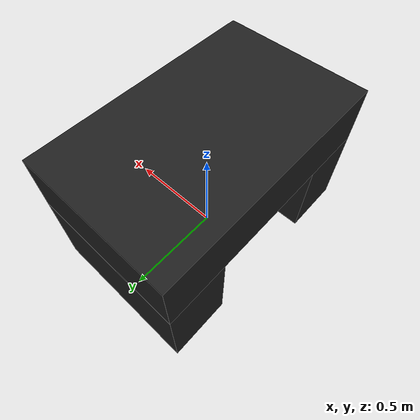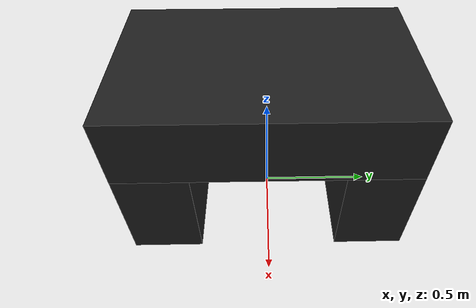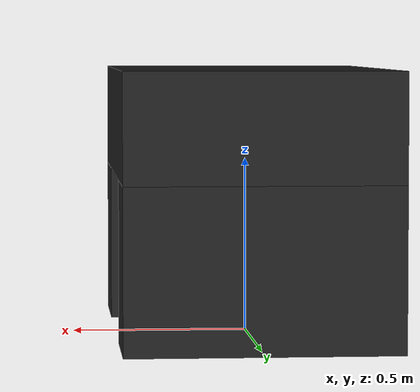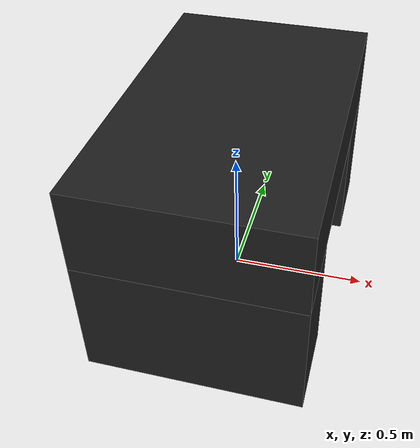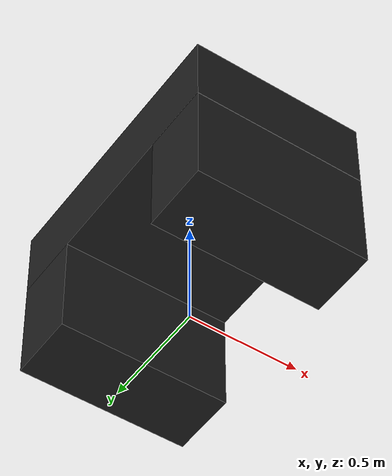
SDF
<?xml version="1.0" ?>
<sdf version="1.7">
  <model name="everblock_tunnel">

    <include>
      <uri>model://everblock_tiny_black</uri>
      <name>block0</name>
	  <pose>0 -0.4572 0 0 0 0</pose>
    </include>

    <include>
      <uri>model://everblock_tiny_black</uri>
      <name>block1</name>
      <pose>0 0.4572 0 0 0 0</pose>
    </include>

    <include>
      <uri>model://everblock_small_black</uri>
      <name>block2</name>
      <pose>0 0.6096 0.6096 1.57 0 0</pose>
    </include>

  </model>
</sdf>

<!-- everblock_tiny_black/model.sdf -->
<sdf version="1.7">
  <model name="everblock_small_black">
    <static>true</static>
    <link name="block">
      <pose>0 0 0.2286 0 0 0</pose>
      <collision name="collision">
        <geometry>
          <box>
            <size>0.762 0.3048 0.4572</size>
          </box>
        </geometry>
      </collision>
      <visual name="visual">
        <geometry>
          <mesh>
            <uri>model://everblock_tiny_black/meshes/block.dae</uri>
            <scale>0.762 0.3048 0.4572</scale>
          </mesh>
	  	</geometry>
        <material>
          <script>
            <uri>model://everblock_tiny_black/materials/scripts</uri>
            <uri>model://everblock_tiny_black/materials/textures</uri>
            <name>BlockTinyBlack</name>
          </script>
        </material>
      </visual>
    </link>
  </model>
</sdf>

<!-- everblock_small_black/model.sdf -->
<sdf version="1.7">
  <model name="everblock_small_black">
    <static>true</static>
    <link name="block">
      <pose>0 0 0.6096 0 0 0</pose>
      <collision name="collision">
        <geometry>
          <box>
            <size>0.762 0.3048 1.2192</size>
          </box>
        </geometry>
      </collision>
      <visual name="visual">
        <geometry>
          <mesh>
            <uri>model://everblock_small_black/meshes/block.dae</uri>
            <scale>0.762 0.3048 1.2192</scale>
          </mesh>
	  	</geometry>
        <material>
          <script>
            <uri>model://everblock_small_black/materials/scripts</uri>
            <uri>model://everblock_small_black/materials/textures</uri>
            <name>BlockSmallBlack</name>
          </script>
        </material>
      </visual>
    </link>
  </model>
</sdf>
